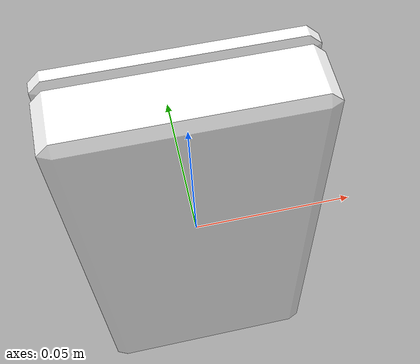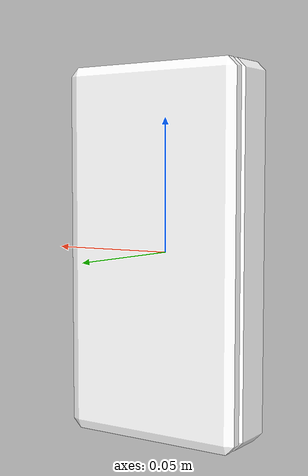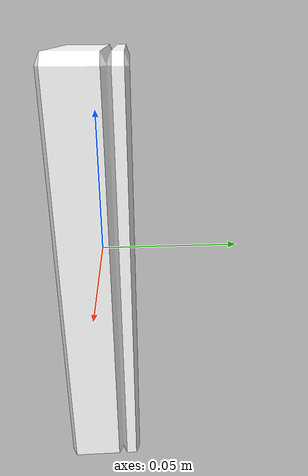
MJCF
<mujoco model="Dish_Sponge_1">
  <default>
    <default class="visual">
      <geom group="2" type="mesh" contype="0" conaffinity="0"/>
    </default>
    <default class="collision">
      <geom group="3" type="mesh"/>
    </default>
  </default>
  <asset>
    <material name="SpongeGreenYellow" specular="0.5" shininess="0.5" rgba="1 1 1 1.0"/>
    <mesh file="Dish_Sponge_1.obj"/>
    <mesh file="Dish_Sponge_1_collision_0.obj"/>
  </asset>
  <worldbody>
    <body name="Dish_Sponge_1">
      <geom material="SpongeGreenYellow" mesh="Dish_Sponge_1" class="visual"/>
      <geom mesh="Dish_Sponge_1_collision_0" rgba="0.7067204376963303 0.42090086659132675 0.09514913920341395 1" class="collision"/>
    </body>
  </worldbody>
</mujoco>
